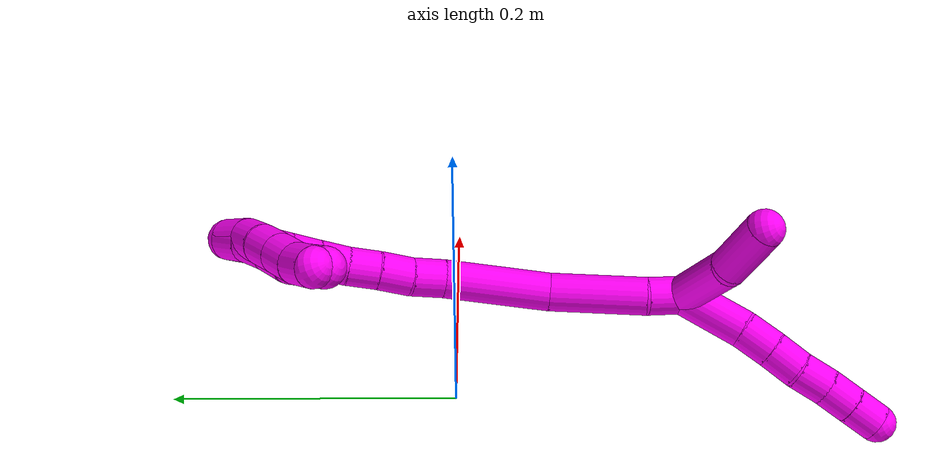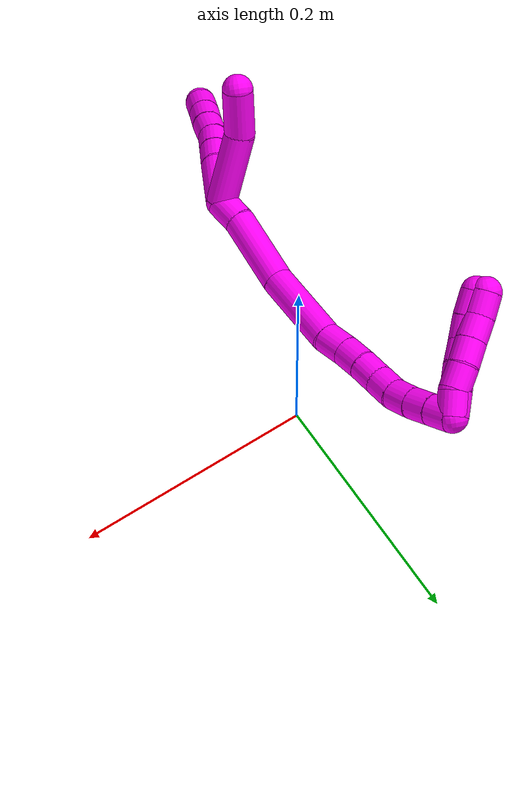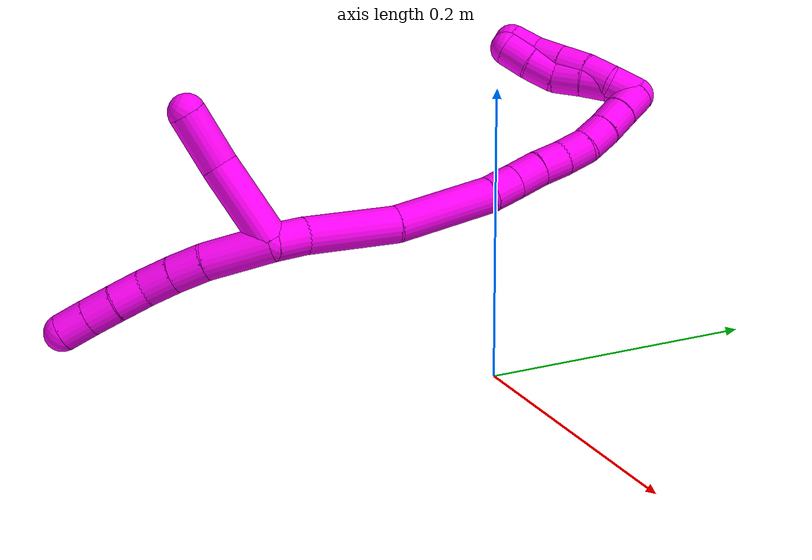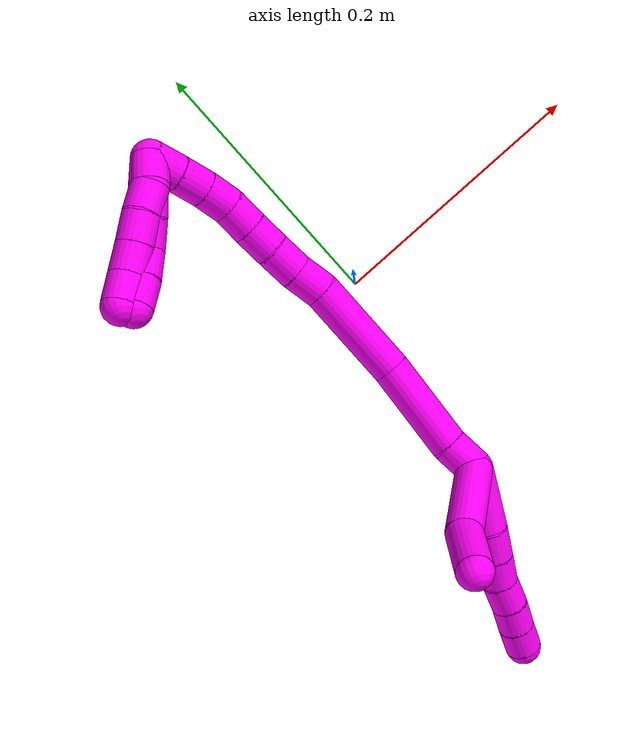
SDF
<sdf version="1.7">
 <world name="default">
  <model name="10">
   <static>0</static>
   <link name="10">
    <collision name="collision-cylinder-e_1_2_8">
     <pose>-0.007064 -0.015395 0.015002 0.798316 -0.317489 -0.134849</pose>
     <geometry><cylinder><radius>0.0125</radius><length>0.045253</length></cylinder></geometry>
     <surface>
      <friction><ode><mu>1.16</mu><mu2>1.16</mu2><slip1>0</slip1><slip2>0</slip2></ode></friction>
      <contact><ode><kp>1e+06</kp><kd>1</kd><max_vel>0</max_vel><min_depth>0.001</min_depth></ode></contact>
     </surface>
    </collision>
    <visual name="visual-cylinder-e_1_2_8">
     <pose>-0.007064 -0.015395 0.015002 0.798316 -0.317489 -0.134849</pose>
     <geometry><cylinder><radius>0.0125</radius><length>0.045253</length></cylinder></geometry>
     <material><ambient>1 0 0.964706 1</ambient></material>
    </visual>
    <collision name="collision-cylinder-e_2_8_9">
     <pose>-0.018073 -0.039035 0.036346 0.915141 -0.362521 -0.180009</pose>
     <geometry><cylinder><radius>0.0125</radius><length>0.022252</length></cylinder></geometry>
     <surface>
      <friction><ode><mu>1.16</mu><mu2>1.16</mu2><slip1>0</slip1><slip2>0</slip2></ode></friction>
      <contact><ode><kp>1e+06</kp><kd>1</kd><max_vel>0</max_vel><min_depth>0.001</min_depth></ode></contact>
     </surface>
    </collision>
    <visual name="visual-cylinder-e_2_8_9">
     <pose>-0.018073 -0.039035 0.036346 0.915141 -0.362521 -0.180009</pose>
     <geometry><cylinder><radius>0.0125</radius><length>0.022252</length></cylinder></geometry>
     <material><ambient>1 0 0.964706 1</ambient></material>
    </visual>
    <collision name="collision-cylinder-e_3_9_10">
     <pose>-0.02585 -0.055409 0.048267 0.969301 -0.37073 -0.196832</pose>
     <geometry><cylinder><radius>0.0125</radius><length>0.021154</length></cylinder></geometry>
     <surface>
      <friction><ode><mu>1.16</mu><mu2>1.16</mu2><slip1>0</slip1><slip2>0</slip2></ode></friction>
      <contact><ode><kp>1e+06</kp><kd>1</kd><max_vel>0</max_vel><min_depth>0.001</min_depth></ode></contact>
     </surface>
    </collision>
    <visual name="visual-cylinder-e_3_9_10">
     <pose>-0.02585 -0.055409 0.048267 0.969301 -0.37073 -0.196832</pose>
     <geometry><cylinder><radius>0.0125</radius><length>0.021154</length></cylinder></geometry>
     <material><ambient>1 0 0.964706 1</ambient></material>
    </visual>
    <collision name="collision-cylinder-e_4_10_11">
     <pose>-0.031854 -0.072268 0.059446 1.00047 -0.206394 -0.113099</pose>
     <geometry><cylinder><radius>0.0125</radius><length>0.021196</length></cylinder></geometry>
     <surface>
      <friction><ode><mu>1.16</mu><mu2>1.16</mu2><slip1>0</slip1><slip2>0</slip2></ode></friction>
      <contact><ode><kp>1e+06</kp><kd>1</kd><max_vel>0</max_vel><min_depth>0.001</min_depth></ode></contact>
     </surface>
    </collision>
    <visual name="visual-cylinder-e_4_10_11">
     <pose>-0.031854 -0.072268 0.059446 1.00047 -0.206394 -0.113099</pose>
     <geometry><cylinder><radius>0.0125</radius><length>0.021196</length></cylinder></geometry>
     <material><ambient>1 0 0.964706 1</ambient></material>
    </visual>
    <collision name="collision-cylinder-e_5_11_12">
     <pose>-0.036885 -0.089186 0.070094 1.01834 -0.289018 -0.162126</pose>
     <geometry><cylinder><radius>0.0125</radius><length>0.020066</length></cylinder></geometry>
     <surface>
      <friction><ode><mu>1.16</mu><mu2>1.16</mu2><slip1>0</slip1><slip2>0</slip2></ode></friction>
      <contact><ode><kp>1e+06</kp><kd>1</kd><max_vel>0</max_vel><min_depth>0.001</min_depth></ode></contact>
     </surface>
    </collision>
    <visual name="visual-cylinder-e_5_11_12">
     <pose>-0.036885 -0.089186 0.070094 1.01834 -0.289018 -0.162126</pose>
     <geometry><cylinder><radius>0.0125</radius><length>0.020066</length></cylinder></geometry>
     <material><ambient>1 0 0.964706 1</ambient></material>
    </visual>
    <collision name="collision-cylinder-e_6_12_6">
     <pose>-0.04236 -0.105738 0.080036 1.04132 -0.263521 -0.151702</pose>
     <geometry><cylinder><radius>0.0125</radius><length>0.02008</length></cylinder></geometry>
     <surface>
      <friction><ode><mu>1.16</mu><mu2>1.16</mu2><slip1>0</slip1><slip2>0</slip2></ode></friction>
      <contact><ode><kp>1e+06</kp><kd>1</kd><max_vel>0</max_vel><min_depth>0.001</min_depth></ode></contact>
     </surface>
    </collision>
    <visual name="visual-cylinder-e_6_12_6">
     <pose>-0.04236 -0.105738 0.080036 1.04132 -0.263521 -0.151702</pose>
     <geometry><cylinder><radius>0.0125</radius><length>0.02008</length></cylinder></geometry>
     <material><ambient>1 0 0.964706 1</ambient></material>
    </visual>
    <collision name="collision-cylinder-e_1_2_13">
     <pose>-0.006827 0.013796 0.025735 -0.492081 -0.229674 0.057916</pose>
     <geometry><cylinder><radius>0.0125</radius><length>0.059974</length></cylinder></geometry>
     <surface>
      <friction><ode><mu>1.16</mu><mu2>1.16</mu2><slip1>0</slip1><slip2>0</slip2></ode></friction>
      <contact><ode><kp>1e+06</kp><kd>1</kd><max_vel>0</max_vel><min_depth>0.001</min_depth></ode></contact>
     </surface>
    </collision>
    <visual name="visual-cylinder-e_1_2_13">
     <pose>-0.006827 0.013796 0.025735 -0.492081 -0.229674 0.057916</pose>
     <geometry><cylinder><radius>0.0125</radius><length>0.059974</length></cylinder></geometry>
     <material><ambient>1 0 0.964706 1</ambient></material>
    </visual>
    <collision name="collision-cylinder-e_2_13_5">
     <pose>-0.01167 0.037219 0.068903 -0.504594 0.099279 -0.025613</pose>
     <geometry><cylinder><radius>0.0125</radius><length>0.040026</length></cylinder></geometry>
     <surface>
      <friction><ode><mu>1.16</mu><mu2>1.16</mu2><slip1>0</slip1><slip2>0</slip2></ode></friction>
      <contact><ode><kp>1e+06</kp><kd>1</kd><max_vel>0</max_vel><min_depth>0.001</min_depth></ode></contact>
     </surface>
    </collision>
    <visual name="visual-cylinder-e_2_13_5">
     <pose>-0.01167 0.037219 0.068903 -0.504594 0.099279 -0.025613</pose>
     <geometry><cylinder><radius>0.0125</radius><length>0.040026</length></cylinder></geometry>
     <material><ambient>1 0 0.964706 1</ambient></material>
    </visual>
    <collision name="collision-cylinder-e_1_2_14">
     <pose>-0.003364 0.007075 -0.008526 -2.44893 -0.294764 0.780557</pose>
     <geometry><cylinder><radius>0.0125</radius><length>0.023156</length></cylinder></geometry>
     <surface>
      <friction><ode><mu>1.16</mu><mu2>1.16</mu2><slip1>0</slip1><slip2>0</slip2></ode></friction>
      <contact><ode><kp>1e+06</kp><kd>1</kd><max_vel>0</max_vel><min_depth>0.001</min_depth></ode></contact>
     </surface>
    </collision>
    <visual name="visual-cylinder-e_1_2_14">
     <pose>-0.003364 0.007075 -0.008526 -2.44893 -0.294764 0.780557</pose>
     <geometry><cylinder><radius>0.0125</radius><length>0.023156</length></cylinder></geometry>
     <material><ambient>1 0 0.964706 1</ambient></material>
    </visual>
    <collision name="collision-cylinder-e_2_14_15">
     <pose>-0.011057 0.032354 -0.042757 -2.52541 -0.136594 0.423462</pose>
     <geometry><cylinder><radius>0.0125</radius><length>0.06359</length></cylinder></geometry>
     <surface>
      <friction><ode><mu>1.16</mu><mu2>1.16</mu2><slip1>0</slip1><slip2>0</slip2></ode></friction>
      <contact><ode><kp>1e+06</kp><kd>1</kd><max_vel>0</max_vel><min_depth>0.001</min_depth></ode></contact>
     </surface>
    </collision>
    <visual name="visual-cylinder-e_2_14_15">
     <pose>-0.011057 0.032354 -0.042757 -2.52541 -0.136594 0.423462</pose>
     <geometry><cylinder><radius>0.0125</radius><length>0.06359</length></cylinder></geometry>
     <material><ambient>1 0 0.964706 1</ambient></material>
    </visual>
    <collision name="collision-cylinder-e_3_15_16">
     <pose>-0.021052 0.074868 -0.09258 -2.3522 -0.163958 0.389492</pose>
     <geometry><cylinder><radius>0.0125</radius><length>0.069418</length></cylinder></geometry>
     <surface>
      <friction><ode><mu>1.16</mu><mu2>1.16</mu2><slip1>0</slip1><slip2>0</slip2></ode></friction>
      <contact><ode><kp>1e+06</kp><kd>1</kd><max_vel>0</max_vel><min_depth>0.001</min_depth></ode></contact>
     </surface>
    </collision>
    <visual name="visual-cylinder-e_3_15_16">
     <pose>-0.021052 0.074868 -0.09258 -2.3522 -0.163958 0.389492</pose>
     <geometry><cylinder><radius>0.0125</radius><length>0.069418</length></cylinder></geometry>
     <material><ambient>1 0 0.964706 1</ambient></material>
    </visual>
    <collision name="collision-cylinder-e_4_16_17">
     <pose>-0.03032 0.107422 -0.122968 -2.22113 -0.334716 0.65688</pose>
     <geometry><cylinder><radius>0.0125</radius><length>0.021933</length></cylinder></geometry>
     <surface>
      <friction><ode><mu>1.16</mu><mu2>1.16</mu2><slip1>0</slip1><slip2>0</slip2></ode></friction>
      <contact><ode><kp>1e+06</kp><kd>1</kd><max_vel>0</max_vel><min_depth>0.001</min_depth></ode></contact>
     </surface>
    </collision>
    <visual name="visual-cylinder-e_4_16_17">
     <pose>-0.03032 0.107422 -0.122968 -2.22113 -0.334716 0.65688</pose>
     <geometry><cylinder><radius>0.0125</radius><length>0.021933</length></cylinder></geometry>
     <material><ambient>1 0 0.964706 1</ambient></material>
    </visual>
    <collision name="collision-cylinder-e_5_17_18">
     <pose>-0.036071 0.124308 -0.135265 -2.17967 -0.201236 0.382216</pose>
     <geometry><cylinder><radius>0.0125</radius><length>0.021505</length></cylinder></geometry>
     <surface>
      <friction><ode><mu>1.16</mu><mu2>1.16</mu2><slip1>0</slip1><slip2>0</slip2></ode></friction>
      <contact><ode><kp>1e+06</kp><kd>1</kd><max_vel>0</max_vel><min_depth>0.001</min_depth></ode></contact>
     </surface>
    </collision>
    <visual name="visual-cylinder-e_5_17_18">
     <pose>-0.036071 0.124308 -0.135265 -2.17967 -0.201236 0.382216</pose>
     <geometry><cylinder><radius>0.0125</radius><length>0.021505</length></cylinder></geometry>
     <material><ambient>1 0 0.964706 1</ambient></material>
    </visual>
    <collision name="collision-cylinder-e_6_18_19">
     <pose>-0.040362 0.140554 -0.147603 -2.2636 -0.213433 0.448597</pose>
     <geometry><cylinder><radius>0.0125</radius><length>0.020224</length></cylinder></geometry>
     <surface>
      <friction><ode><mu>1.16</mu><mu2>1.16</mu2><slip1>0</slip1><slip2>0</slip2></ode></friction>
      <contact><ode><kp>1e+06</kp><kd>1</kd><max_vel>0</max_vel><min_depth>0.001</min_depth></ode></contact>
     </surface>
    </collision>
    <visual name="visual-cylinder-e_6_18_19">
     <pose>-0.040362 0.140554 -0.147603 -2.2636 -0.213433 0.448597</pose>
     <geometry><cylinder><radius>0.0125</radius><length>0.020224</length></cylinder></geometry>
     <material><ambient>1 0 0.964706 1</ambient></material>
    </visual>
    <collision name="collision-cylinder-e_7_19_20">
     <pose>-0.044055 0.156229 -0.159615 -2.18572 -0.155652 0.298855</pose>
     <geometry><cylinder><radius>0.0125</radius><length>0.020002</length></cylinder></geometry>
     <surface>
      <friction><ode><mu>1.16</mu><mu2>1.16</mu2><slip1>0</slip1><slip2>0</slip2></ode></friction>
      <contact><ode><kp>1e+06</kp><kd>1</kd><max_vel>0</max_vel><min_depth>0.001</min_depth></ode></contact>
     </surface>
    </collision>
    <visual name="visual-cylinder-e_7_19_20">
     <pose>-0.044055 0.156229 -0.159615 -2.18572 -0.155652 0.298855</pose>
     <geometry><cylinder><radius>0.0125</radius><length>0.020002</length></cylinder></geometry>
     <material><ambient>1 0 0.964706 1</ambient></material>
    </visual>
    <collision name="collision-cylinder-e_8_20_21">
     <pose>-0.048346 0.173168 -0.169211 -1.98471 -0.275742 0.418774</pose>
     <geometry><cylinder><radius>0.0125</radius><length>0.020135</length></cylinder></geometry>
     <surface>
      <friction><ode><mu>1.16</mu><mu2>1.16</mu2><slip1>0</slip1><slip2>0</slip2></ode></friction>
      <contact><ode><kp>1e+06</kp><kd>1</kd><max_vel>0</max_vel><min_depth>0.001</min_depth></ode></contact>
     </surface>
    </collision>
    <visual name="visual-cylinder-e_8_20_21">
     <pose>-0.048346 0.173168 -0.169211 -1.98471 -0.275742 0.418774</pose>
     <geometry><cylinder><radius>0.0125</radius><length>0.020135</length></cylinder></geometry>
     <material><ambient>1 0 0.964706 1</ambient></material>
    </visual>
    <collision name="collision-cylinder-e_9_21_22">
     <pose>-0.054306 0.19097 -0.176247 -1.90882 -0.327717 0.45855</pose>
     <geometry><cylinder><radius>0.0125</radius><length>0.020001</length></cylinder></geometry>
     <surface>
      <friction><ode><mu>1.16</mu><mu2>1.16</mu2><slip1>0</slip1><slip2>0</slip2></ode></friction>
      <contact><ode><kp>1e+06</kp><kd>1</kd><max_vel>0</max_vel><min_depth>0.001</min_depth></ode></contact>
     </surface>
    </collision>
    <visual name="visual-cylinder-e_9_21_22">
     <pose>-0.054306 0.19097 -0.176247 -1.90882 -0.327717 0.45855</pose>
     <geometry><cylinder><radius>0.0125</radius><length>0.020001</length></cylinder></geometry>
     <material><ambient>1 0 0.964706 1</ambient></material>
    </visual>
    <collision name="collision-cylinder-e_10_22_1">
     <pose>-0.061111 0.208649 -0.182702 -1.93313 -0.366133 0.524022</pose>
     <geometry><cylinder><radius>0.0125</radius><length>0.020035</length></cylinder></geometry>
     <surface>
      <friction><ode><mu>1.16</mu><mu2>1.16</mu2><slip1>0</slip1><slip2>0</slip2></ode></friction>
      <contact><ode><kp>1e+06</kp><kd>1</kd><max_vel>0</max_vel><min_depth>0.001</min_depth></ode></contact>
     </surface>
    </collision>
    <visual name="visual-cylinder-e_10_22_1">
     <pose>-0.061111 0.208649 -0.182702 -1.93313 -0.366133 0.524022</pose>
     <geometry><cylinder><radius>0.0125</radius><length>0.020035</length></cylinder></geometry>
     <material><ambient>1 0 0.964706 1</ambient></material>
    </visual>
    <collision name="collision-cylinder-e_1_1_23">
     <pose>-0.068217 0.21678 -0.176678 0.06574 -0.359629 -0.011954</pose>
     <geometry><cylinder><radius>0.0125</radius><length>0.02</length></cylinder></geometry>
     <surface>
      <friction><ode><mu>1.16</mu><mu2>1.16</mu2><slip1>0</slip1><slip2>0</slip2></ode></friction>
      <contact><ode><kp>1e+06</kp><kd>1</kd><max_vel>0</max_vel><min_depth>0.001</min_depth></ode></contact>
     </surface>
    </collision>
    <visual name="visual-cylinder-e_1_1_23">
     <pose>-0.068217 0.21678 -0.176678 0.06574 -0.359629 -0.011954</pose>
     <geometry><cylinder><radius>0.0125</radius><length>0.02</length></cylinder></geometry>
     <material><ambient>1 0 0.964706 1</ambient></material>
    </visual>
    <collision name="collision-cylinder-e_2_23_24">
     <pose>-0.07603 0.213601 -0.158678 0.287916 -0.443823 -0.065391</pose>
     <geometry><cylinder><radius>0.0125</radius><length>0.02</length></cylinder></geometry>
     <surface>
      <friction><ode><mu>1.16</mu><mu2>1.16</mu2><slip1>0</slip1><slip2>0</slip2></ode></friction>
      <contact><ode><kp>1e+06</kp><kd>1</kd><max_vel>0</max_vel><min_depth>0.001</min_depth></ode></contact>
     </surface>
    </collision>
    <visual name="visual-cylinder-e_2_23_24">
     <pose>-0.07603 0.213601 -0.158678 0.287916 -0.443823 -0.065391</pose>
     <geometry><cylinder><radius>0.0125</radius><length>0.02</length></cylinder></geometry>
     <material><ambient>1 0 0.964706 1</ambient></material>
    </visual>
    <collision name="collision-cylinder-e_3_24_25">
     <pose>-0.085423 0.208218 -0.141891 0.333817 -0.535061 -0.092293</pose>
     <geometry><cylinder><radius>0.0125</radius><length>0.02</length></cylinder></geometry>
     <surface>
      <friction><ode><mu>1.16</mu><mu2>1.16</mu2><slip1>0</slip1><slip2>0</slip2></ode></friction>
      <contact><ode><kp>1e+06</kp><kd>1</kd><max_vel>0</max_vel><min_depth>0.001</min_depth></ode></contact>
     </surface>
    </collision>
    <visual name="visual-cylinder-e_3_24_25">
     <pose>-0.085423 0.208218 -0.141891 0.333817 -0.535061 -0.092293</pose>
     <geometry><cylinder><radius>0.0125</radius><length>0.02</length></cylinder></geometry>
     <material><ambient>1 0 0.964706 1</ambient></material>
    </visual>
    <collision name="collision-cylinder-e_4_25_26">
     <pose>-0.094256 0.20549 -0.124487 -0.009747 -0.382663 0.001888</pose>
     <geometry><cylinder><radius>0.0125</radius><length>0.02</length></cylinder></geometry>
     <surface>
      <friction><ode><mu>1.16</mu><mu2>1.16</mu2><slip1>0</slip1><slip2>0</slip2></ode></friction>
      <contact><ode><kp>1e+06</kp><kd>1</kd><max_vel>0</max_vel><min_depth>0.001</min_depth></ode></contact>
     </surface>
    </collision>
    <visual name="visual-cylinder-e_4_25_26">
     <pose>-0.094256 0.20549 -0.124487 -0.009747 -0.382663 0.001888</pose>
     <geometry><cylinder><radius>0.0125</radius><length>0.02</length></cylinder></geometry>
     <material><ambient>1 0 0.964706 1</ambient></material>
    </visual>
    <collision name="collision-cylinder-e_5_26_4">
     <pose>-0.10235 0.20671 -0.106283 -0.125866 -0.451163 0.028921</pose>
     <geometry><cylinder><radius>0.0125</radius><length>0.02</length></cylinder></geometry>
     <surface>
      <friction><ode><mu>1.16</mu><mu2>1.16</mu2><slip1>0</slip1><slip2>0</slip2></ode></friction>
      <contact><ode><kp>1e+06</kp><kd>1</kd><max_vel>0</max_vel><min_depth>0.001</min_depth></ode></contact>
     </surface>
    </collision>
    <visual name="visual-cylinder-e_5_26_4">
     <pose>-0.10235 0.20671 -0.106283 -0.125866 -0.451163 0.028921</pose>
     <geometry><cylinder><radius>0.0125</radius><length>0.02</length></cylinder></geometry>
     <material><ambient>1 0 0.964706 1</ambient></material>
    </visual>
    <collision name="collision-cylinder-e_1_1_27">
     <pose>-0.067292 0.217194 -0.176362 0.020805 -0.262431 -0.002746</pose>
     <geometry><cylinder><radius>0.0125</radius><length>0.02</length></cylinder></geometry>
     <surface>
      <friction><ode><mu>1.16</mu><mu2>1.16</mu2><slip1>0</slip1><slip2>0</slip2></ode></friction>
      <contact><ode><kp>1e+06</kp><kd>1</kd><max_vel>0</max_vel><min_depth>0.001</min_depth></ode></contact>
     </surface>
    </collision>
    <visual name="visual-cylinder-e_1_1_27">
     <pose>-0.067292 0.217194 -0.176362 0.020805 -0.262431 -0.002746</pose>
     <geometry><cylinder><radius>0.0125</radius><length>0.02</length></cylinder></geometry>
     <material><ambient>1 0 0.964706 1</ambient></material>
    </visual>
    <collision name="collision-cylinder-e_2_27_28">
     <pose>-0.075152 0.217248 -0.158209 -0.03001 -0.554505 0.008541</pose>
     <geometry><cylinder><radius>0.0125</radius><length>0.02</length></cylinder></geometry>
     <surface>
      <friction><ode><mu>1.16</mu><mu2>1.16</mu2><slip1>0</slip1><slip2>0</slip2></ode></friction>
      <contact><ode><kp>1e+06</kp><kd>1</kd><max_vel>0</max_vel><min_depth>0.001</min_depth></ode></contact>
     </surface>
    </collision>
    <visual name="visual-cylinder-e_2_27_28">
     <pose>-0.075152 0.217248 -0.158209 -0.03001 -0.554505 0.008541</pose>
     <geometry><cylinder><radius>0.0125</radius><length>0.02</length></cylinder></geometry>
     <material><ambient>1 0 0.964706 1</ambient></material>
    </visual>
    <collision name="collision-cylinder-e_3_28_29">
     <pose>-0.085789 0.216494 -0.141337 0.119959 -0.567077 -0.034993</pose>
     <geometry><cylinder><radius>0.0125</radius><length>0.02</length></cylinder></geometry>
     <surface>
      <friction><ode><mu>1.16</mu><mu2>1.16</mu2><slip1>0</slip1><slip2>0</slip2></ode></friction>
      <contact><ode><kp>1e+06</kp><kd>1</kd><max_vel>0</max_vel><min_depth>0.001</min_depth></ode></contact>
     </surface>
    </collision>
    <visual name="visual-cylinder-e_3_28_29">
     <pose>-0.085789 0.216494 -0.141337 0.119959 -0.567077 -0.034993</pose>
     <geometry><cylinder><radius>0.0125</radius><length>0.02</length></cylinder></geometry>
     <material><ambient>1 0 0.964706 1</ambient></material>
    </visual>
    <collision name="collision-cylinder-e_4_29_30">
     <pose>-0.096732 0.214584 -0.124708 0.108716 -0.591002 -0.033124</pose>
     <geometry><cylinder><radius>0.0125</radius><length>0.02</length></cylinder></geometry>
     <surface>
      <friction><ode><mu>1.16</mu><mu2>1.16</mu2><slip1>0</slip1><slip2>0</slip2></ode></friction>
      <contact><ode><kp>1e+06</kp><kd>1</kd><max_vel>0</max_vel><min_depth>0.001</min_depth></ode></contact>
     </surface>
    </collision>
    <visual name="visual-cylinder-e_4_29_30">
     <pose>-0.096732 0.214584 -0.124708 0.108716 -0.591002 -0.033124</pose>
     <geometry><cylinder><radius>0.0125</radius><length>0.02</length></cylinder></geometry>
     <material><ambient>1 0 0.964706 1</ambient></material>
    </visual>
    <collision name="collision-cylinder-e_5_30_3">
     <pose>-0.106816 0.214142 -0.107541 -0.051444 -0.468099 0.012268</pose>
     <geometry><cylinder><radius>0.0125</radius><length>0.02</length></cylinder></geometry>
     <surface>
      <friction><ode><mu>1.16</mu><mu2>1.16</mu2><slip1>0</slip1><slip2>0</slip2></ode></friction>
      <contact><ode><kp>1e+06</kp><kd>1</kd><max_vel>0</max_vel><min_depth>0.001</min_depth></ode></contact>
     </surface>
    </collision>
    <visual name="visual-cylinder-e_5_30_3">
     <pose>-0.106816 0.214142 -0.107541 -0.051444 -0.468099 0.012268</pose>
     <geometry><cylinder><radius>0.0125</radius><length>0.02</length></cylinder></geometry>
     <material><ambient>1 0 0.964706 1</ambient></material>
    </visual>
    <collision name="collision-sphere-3">
     <pose>-0.111328 0.2146 -0.098628 0 -0 0</pose>
     <geometry><sphere><radius>0.0125</radius></sphere></geometry>
     <surface>
      <friction><ode><mu>1.16</mu><mu2>1.16</mu2><slip1>0</slip1><slip2>0</slip2></ode></friction>
      <contact><ode><kp>1e+06</kp><kd>1</kd><max_vel>0</max_vel><min_depth>0.001</min_depth></ode></contact>
     </surface>
    </collision>
    <visual name="visual-sphere-3">
     <pose>-0.111328 0.2146 -0.098628 0 -0 0</pose>
     <geometry><sphere><radius>0.0125</radius></sphere></geometry>
     <material><ambient>1 0 0.964706 1</ambient></material>
    </visual>
    <collision name="collision-sphere-30">
     <pose>-0.102304 0.213683 -0.116453 0 -0 0</pose>
     <geometry><sphere><radius>0.0125</radius></sphere></geometry>
     <surface>
      <friction><ode><mu>1.16</mu><mu2>1.16</mu2><slip1>0</slip1><slip2>0</slip2></ode></friction>
      <contact><ode><kp>1e+06</kp><kd>1</kd><max_vel>0</max_vel><min_depth>0.001</min_depth></ode></contact>
     </surface>
    </collision>
    <visual name="visual-sphere-30">
     <pose>-0.102304 0.213683 -0.116453 0 -0 0</pose>
     <geometry><sphere><radius>0.0125</radius></sphere></geometry>
     <material><ambient>1 0 0.964706 1</ambient></material>
    </visual>
    <collision name="collision-sphere-29">
     <pose>-0.09116 0.215485 -0.132963 0 -0 0</pose>
     <geometry><sphere><radius>0.0125</radius></sphere></geometry>
     <surface>
      <friction><ode><mu>1.16</mu><mu2>1.16</mu2><slip1>0</slip1><slip2>0</slip2></ode></friction>
      <contact><ode><kp>1e+06</kp><kd>1</kd><max_vel>0</max_vel><min_depth>0.001</min_depth></ode></contact>
     </surface>
    </collision>
    <visual name="visual-sphere-29">
     <pose>-0.09116 0.215485 -0.132963 0 -0 0</pose>
     <geometry><sphere><radius>0.0125</radius></sphere></geometry>
     <material><ambient>1 0 0.964706 1</ambient></material>
    </visual>
    <collision name="collision-sphere-28">
     <pose>-0.080417 0.217503 -0.149711 0 -0 0</pose>
     <geometry><sphere><radius>0.0125</radius></sphere></geometry>
     <surface>
      <friction><ode><mu>1.16</mu><mu2>1.16</mu2><slip1>0</slip1><slip2>0</slip2></ode></friction>
      <contact><ode><kp>1e+06</kp><kd>1</kd><max_vel>0</max_vel><min_depth>0.001</min_depth></ode></contact>
     </surface>
    </collision>
    <visual name="visual-sphere-28">
     <pose>-0.080417 0.217503 -0.149711 0 -0 0</pose>
     <geometry><sphere><radius>0.0125</radius></sphere></geometry>
     <material><ambient>1 0 0.964706 1</ambient></material>
    </visual>
    <collision name="collision-sphere-27">
     <pose>-0.069886 0.216993 -0.166707 0 -0 0</pose>
     <geometry><sphere><radius>0.0125</radius></sphere></geometry>
     <surface>
      <friction><ode><mu>1.16</mu><mu2>1.16</mu2><slip1>0</slip1><slip2>0</slip2></ode></friction>
      <contact><ode><kp>1e+06</kp><kd>1</kd><max_vel>0</max_vel><min_depth>0.001</min_depth></ode></contact>
     </surface>
    </collision>
    <visual name="visual-sphere-27">
     <pose>-0.069886 0.216993 -0.166707 0 -0 0</pose>
     <geometry><sphere><radius>0.0125</radius></sphere></geometry>
     <material><ambient>1 0 0.964706 1</ambient></material>
    </visual>
    <collision name="collision-sphere-4">
     <pose>-0.10671 0.20784 -0.097355 0 -0 0</pose>
     <geometry><sphere><radius>0.0125</radius></sphere></geometry>
     <surface>
      <friction><ode><mu>1.16</mu><mu2>1.16</mu2><slip1>0</slip1><slip2>0</slip2></ode></friction>
      <contact><ode><kp>1e+06</kp><kd>1</kd><max_vel>0</max_vel><min_depth>0.001</min_depth></ode></contact>
     </surface>
    </collision>
    <visual name="visual-sphere-4">
     <pose>-0.10671 0.20784 -0.097355 0 -0 0</pose>
     <geometry><sphere><radius>0.0125</radius></sphere></geometry>
     <material><ambient>1 0 0.964706 1</ambient></material>
    </visual>
    <collision name="collision-sphere-26">
     <pose>-0.09799 0.20558 -0.115211 0 -0 0</pose>
     <geometry><sphere><radius>0.0125</radius></sphere></geometry>
     <surface>
      <friction><ode><mu>1.16</mu><mu2>1.16</mu2><slip1>0</slip1><slip2>0</slip2></ode></friction>
      <contact><ode><kp>1e+06</kp><kd>1</kd><max_vel>0</max_vel><min_depth>0.001</min_depth></ode></contact>
     </surface>
    </collision>
    <visual name="visual-sphere-26">
     <pose>-0.09799 0.20558 -0.115211 0 -0 0</pose>
     <geometry><sphere><radius>0.0125</radius></sphere></geometry>
     <material><ambient>1 0 0.964706 1</ambient></material>
    </visual>
    <collision name="collision-sphere-25">
     <pose>-0.090522 0.205399 -0.133764 0 -0 0</pose>
     <geometry><sphere><radius>0.0125</radius></sphere></geometry>
     <surface>
      <friction><ode><mu>1.16</mu><mu2>1.16</mu2><slip1>0</slip1><slip2>0</slip2></ode></friction>
      <contact><ode><kp>1e+06</kp><kd>1</kd><max_vel>0</max_vel><min_depth>0.001</min_depth></ode></contact>
     </surface>
    </collision>
    <visual name="visual-sphere-25">
     <pose>-0.090522 0.205399 -0.133764 0 -0 0</pose>
     <geometry><sphere><radius>0.0125</radius></sphere></geometry>
     <material><ambient>1 0 0.964706 1</ambient></material>
    </visual>
    <collision name="collision-sphere-24">
     <pose>-0.080324 0.211036 -0.150019 0 -0 0</pose>
     <geometry><sphere><radius>0.0125</radius></sphere></geometry>
     <surface>
      <friction><ode><mu>1.16</mu><mu2>1.16</mu2><slip1>0</slip1><slip2>0</slip2></ode></friction>
      <contact><ode><kp>1e+06</kp><kd>1</kd><max_vel>0</max_vel><min_depth>0.001</min_depth></ode></contact>
     </surface>
    </collision>
    <visual name="visual-sphere-24">
     <pose>-0.080324 0.211036 -0.150019 0 -0 0</pose>
     <geometry><sphere><radius>0.0125</radius></sphere></geometry>
     <material><ambient>1 0 0.964706 1</ambient></material>
    </visual>
    <collision name="collision-sphere-23">
     <pose>-0.071736 0.216165 -0.167338 0 -0 0</pose>
     <geometry><sphere><radius>0.0125</radius></sphere></geometry>
     <surface>
      <friction><ode><mu>1.16</mu><mu2>1.16</mu2><slip1>0</slip1><slip2>0</slip2></ode></friction>
      <contact><ode><kp>1e+06</kp><kd>1</kd><max_vel>0</max_vel><min_depth>0.001</min_depth></ode></contact>
     </surface>
    </collision>
    <visual name="visual-sphere-23">
     <pose>-0.071736 0.216165 -0.167338 0 -0 0</pose>
     <geometry><sphere><radius>0.0125</radius></sphere></geometry>
     <material><ambient>1 0 0.964706 1</ambient></material>
    </visual>
    <collision name="collision-sphere-1">
     <pose>-0.064698 0.217395 -0.186018 0 -0 0</pose>
     <geometry><sphere><radius>0.0125</radius></sphere></geometry>
     <surface>
      <friction><ode><mu>1.16</mu><mu2>1.16</mu2><slip1>0</slip1><slip2>0</slip2></ode></friction>
      <contact><ode><kp>1e+06</kp><kd>1</kd><max_vel>0</max_vel><min_depth>0.001</min_depth></ode></contact>
     </surface>
    </collision>
    <visual name="visual-sphere-1">
     <pose>-0.064698 0.217395 -0.186018 0 -0 0</pose>
     <geometry><sphere><radius>0.0125</radius></sphere></geometry>
     <material><ambient>1 0 0.964706 1</ambient></material>
    </visual>
    <collision name="collision-sphere-22">
     <pose>-0.057525 0.199902 -0.179387 0 -0 0</pose>
     <geometry><sphere><radius>0.0125</radius></sphere></geometry>
     <surface>
      <friction><ode><mu>1.16</mu><mu2>1.16</mu2><slip1>0</slip1><slip2>0</slip2></ode></friction>
      <contact><ode><kp>1e+06</kp><kd>1</kd><max_vel>0</max_vel><min_depth>0.001</min_depth></ode></contact>
     </surface>
    </collision>
    <visual name="visual-sphere-22">
     <pose>-0.057525 0.199902 -0.179387 0 -0 0</pose>
     <geometry><sphere><radius>0.0125</radius></sphere></geometry>
     <material><ambient>1 0 0.964706 1</ambient></material>
    </visual>
    <collision name="collision-sphere-21">
     <pose>-0.051087 0.182037 -0.173107 0 -0 0</pose>
     <geometry><sphere><radius>0.0125</radius></sphere></geometry>
     <surface>
      <friction><ode><mu>1.16</mu><mu2>1.16</mu2><slip1>0</slip1><slip2>0</slip2></ode></friction>
      <contact><ode><kp>1e+06</kp><kd>1</kd><max_vel>0</max_vel><min_depth>0.001</min_depth></ode></contact>
     </surface>
    </collision>
    <visual name="visual-sphere-21">
     <pose>-0.051087 0.182037 -0.173107 0 -0 0</pose>
     <geometry><sphere><radius>0.0125</radius></sphere></geometry>
     <material><ambient>1 0 0.964706 1</ambient></material>
    </visual>
    <collision name="collision-sphere-12">
     <pose>-0.039745 -0.097372 0.07514 0 -0 0</pose>
     <geometry><sphere><radius>0.0125</radius></sphere></geometry>
     <surface>
      <friction><ode><mu>1.16</mu><mu2>1.16</mu2><slip1>0</slip1><slip2>0</slip2></ode></friction>
      <contact><ode><kp>1e+06</kp><kd>1</kd><max_vel>0</max_vel><min_depth>0.001</min_depth></ode></contact>
     </surface>
    </collision>
    <visual name="visual-sphere-12">
     <pose>-0.039745 -0.097372 0.07514 0 -0 0</pose>
     <geometry><sphere><radius>0.0125</radius></sphere></geometry>
     <material><ambient>1 0 0.964706 1</ambient></material>
    </visual>
    <collision name="collision-sphere-11">
     <pose>-0.034026 -0.081 0.065047 0 -0 0</pose>
     <geometry><sphere><radius>0.0125</radius></sphere></geometry>
     <surface>
      <friction><ode><mu>1.16</mu><mu2>1.16</mu2><slip1>0</slip1><slip2>0</slip2></ode></friction>
      <contact><ode><kp>1e+06</kp><kd>1</kd><max_vel>0</max_vel><min_depth>0.001</min_depth></ode></contact>
     </surface>
    </collision>
    <visual name="visual-sphere-11">
     <pose>-0.034026 -0.081 0.065047 0 -0 0</pose>
     <geometry><sphere><radius>0.0125</radius></sphere></geometry>
     <material><ambient>1 0 0.964706 1</ambient></material>
    </visual>
    <collision name="collision-sphere-10">
     <pose>-0.029682 -0.063537 0.053846 0 -0 0</pose>
     <geometry><sphere><radius>0.0125</radius></sphere></geometry>
     <surface>
      <friction><ode><mu>1.16</mu><mu2>1.16</mu2><slip1>0</slip1><slip2>0</slip2></ode></friction>
      <contact><ode><kp>1e+06</kp><kd>1</kd><max_vel>0</max_vel><min_depth>0.001</min_depth></ode></contact>
     </surface>
    </collision>
    <visual name="visual-sphere-10">
     <pose>-0.029682 -0.063537 0.053846 0 -0 0</pose>
     <geometry><sphere><radius>0.0125</radius></sphere></geometry>
     <material><ambient>1 0 0.964706 1</ambient></material>
    </visual>
    <collision name="collision-sphere-9">
     <pose>-0.022018 -0.047281 0.042689 0 -0 0</pose>
     <geometry><sphere><radius>0.0125</radius></sphere></geometry>
     <surface>
      <friction><ode><mu>1.16</mu><mu2>1.16</mu2><slip1>0</slip1><slip2>0</slip2></ode></friction>
      <contact><ode><kp>1e+06</kp><kd>1</kd><max_vel>0</max_vel><min_depth>0.001</min_depth></ode></contact>
     </surface>
    </collision>
    <visual name="visual-sphere-9">
     <pose>-0.022018 -0.047281 0.042689 0 -0 0</pose>
     <geometry><sphere><radius>0.0125</radius></sphere></geometry>
     <material><ambient>1 0 0.964706 1</ambient></material>
    </visual>
    <collision name="collision-sphere-2">
     <geometry><sphere><radius>0.0125</radius></sphere></geometry>
     <surface>
      <friction><ode><mu>1.16</mu><mu2>1.16</mu2><slip1>0</slip1><slip2>0</slip2></ode></friction>
      <contact><ode><kp>1e+06</kp><kd>1</kd><max_vel>0</max_vel><min_depth>0.001</min_depth></ode></contact>
     </surface>
    </collision>
    <visual name="visual-sphere-2">
     <geometry><sphere><radius>0.0125</radius></sphere></geometry>
     <material><ambient>1 0 0.964706 1</ambient></material>
    </visual>
    <collision name="collision-sphere-19">
     <pose>-0.042504 0.148159 -0.153915 0 -0 0</pose>
     <geometry><sphere><radius>0.0125</radius></sphere></geometry>
     <surface>
      <friction><ode><mu>1.16</mu><mu2>1.16</mu2><slip1>0</slip1><slip2>0</slip2></ode></friction>
      <contact><ode><kp>1e+06</kp><kd>1</kd><max_vel>0</max_vel><min_depth>0.001</min_depth></ode></contact>
     </surface>
    </collision>
    <visual name="visual-sphere-19">
     <pose>-0.042504 0.148159 -0.153915 0 -0 0</pose>
     <geometry><sphere><radius>0.0125</radius></sphere></geometry>
     <material><ambient>1 0 0.964706 1</ambient></material>
    </visual>
    <collision name="collision-sphere-8">
     <pose>-0.014127 -0.030789 0.030004 0 -0 0</pose>
     <geometry><sphere><radius>0.0125</radius></sphere></geometry>
     <surface>
      <friction><ode><mu>1.16</mu><mu2>1.16</mu2><slip1>0</slip1><slip2>0</slip2></ode></friction>
      <contact><ode><kp>1e+06</kp><kd>1</kd><max_vel>0</max_vel><min_depth>0.001</min_depth></ode></contact>
     </surface>
    </collision>
    <visual name="visual-sphere-8">
     <pose>-0.014127 -0.030789 0.030004 0 -0 0</pose>
     <geometry><sphere><radius>0.0125</radius></sphere></geometry>
     <material><ambient>1 0 0.964706 1</ambient></material>
    </visual>
    <collision name="collision-sphere-6">
     <pose>-0.044975 -0.114104 0.084932 0 -0 0</pose>
     <geometry><sphere><radius>0.0125</radius></sphere></geometry>
     <surface>
      <friction><ode><mu>1.16</mu><mu2>1.16</mu2><slip1>0</slip1><slip2>0</slip2></ode></friction>
      <contact><ode><kp>1e+06</kp><kd>1</kd><max_vel>0</max_vel><min_depth>0.001</min_depth></ode></contact>
     </surface>
    </collision>
    <visual name="visual-sphere-6">
     <pose>-0.044975 -0.114104 0.084932 0 -0 0</pose>
     <geometry><sphere><radius>0.0125</radius></sphere></geometry>
     <material><ambient>1 0 0.964706 1</ambient></material>
    </visual>
    <collision name="collision-sphere-13">
     <pose>-0.013654 0.027591 0.05147 0 -0 0</pose>
     <geometry><sphere><radius>0.0125</radius></sphere></geometry>
     <surface>
      <friction><ode><mu>1.16</mu><mu2>1.16</mu2><slip1>0</slip1><slip2>0</slip2></ode></friction>
      <contact><ode><kp>1e+06</kp><kd>1</kd><max_vel>0</max_vel><min_depth>0.001</min_depth></ode></contact>
     </surface>
    </collision>
    <visual name="visual-sphere-13">
     <pose>-0.013654 0.027591 0.05147 0 -0 0</pose>
     <geometry><sphere><radius>0.0125</radius></sphere></geometry>
     <material><ambient>1 0 0.964706 1</ambient></material>
    </visual>
    <collision name="collision-sphere-5">
     <pose>-0.009686 0.046847 0.086335 0 -0 0</pose>
     <geometry><sphere><radius>0.0125</radius></sphere></geometry>
     <surface>
      <friction><ode><mu>1.16</mu><mu2>1.16</mu2><slip1>0</slip1><slip2>0</slip2></ode></friction>
      <contact><ode><kp>1e+06</kp><kd>1</kd><max_vel>0</max_vel><min_depth>0.001</min_depth></ode></contact>
     </surface>
    </collision>
    <visual name="visual-sphere-5">
     <pose>-0.009686 0.046847 0.086335 0 -0 0</pose>
     <geometry><sphere><radius>0.0125</radius></sphere></geometry>
     <material><ambient>1 0 0.964706 1</ambient></material>
    </visual>
    <collision name="collision-sphere-14">
     <pose>-0.006727 0.01415 -0.017051 0 -0 0</pose>
     <geometry><sphere><radius>0.0125</radius></sphere></geometry>
     <surface>
      <friction><ode><mu>1.16</mu><mu2>1.16</mu2><slip1>0</slip1><slip2>0</slip2></ode></friction>
      <contact><ode><kp>1e+06</kp><kd>1</kd><max_vel>0</max_vel><min_depth>0.001</min_depth></ode></contact>
     </surface>
    </collision>
    <visual name="visual-sphere-14">
     <pose>-0.006727 0.01415 -0.017051 0 -0 0</pose>
     <geometry><sphere><radius>0.0125</radius></sphere></geometry>
     <material><ambient>1 0 0.964706 1</ambient></material>
    </visual>
    <collision name="collision-sphere-15">
     <pose>-0.015386 0.050558 -0.068463 0 -0 0</pose>
     <geometry><sphere><radius>0.0125</radius></sphere></geometry>
     <surface>
      <friction><ode><mu>1.16</mu><mu2>1.16</mu2><slip1>0</slip1><slip2>0</slip2></ode></friction>
      <contact><ode><kp>1e+06</kp><kd>1</kd><max_vel>0</max_vel><min_depth>0.001</min_depth></ode></contact>
     </surface>
    </collision>
    <visual name="visual-sphere-15">
     <pose>-0.015386 0.050558 -0.068463 0 -0 0</pose>
     <geometry><sphere><radius>0.0125</radius></sphere></geometry>
     <material><ambient>1 0 0.964706 1</ambient></material>
    </visual>
    <collision name="collision-sphere-16">
     <pose>-0.026717 0.099178 -0.116697 0 -0 0</pose>
     <geometry><sphere><radius>0.0125</radius></sphere></geometry>
     <surface>
      <friction><ode><mu>1.16</mu><mu2>1.16</mu2><slip1>0</slip1><slip2>0</slip2></ode></friction>
      <contact><ode><kp>1e+06</kp><kd>1</kd><max_vel>0</max_vel><min_depth>0.001</min_depth></ode></contact>
     </surface>
    </collision>
    <visual name="visual-sphere-16">
     <pose>-0.026717 0.099178 -0.116697 0 -0 0</pose>
     <geometry><sphere><radius>0.0125</radius></sphere></geometry>
     <material><ambient>1 0 0.964706 1</ambient></material>
    </visual>
    <collision name="collision-sphere-17">
     <pose>-0.033922 0.115666 -0.129239 0 -0 0</pose>
     <geometry><sphere><radius>0.0125</radius></sphere></geometry>
     <surface>
      <friction><ode><mu>1.16</mu><mu2>1.16</mu2><slip1>0</slip1><slip2>0</slip2></ode></friction>
      <contact><ode><kp>1e+06</kp><kd>1</kd><max_vel>0</max_vel><min_depth>0.001</min_depth></ode></contact>
     </surface>
    </collision>
    <visual name="visual-sphere-17">
     <pose>-0.033922 0.115666 -0.129239 0 -0 0</pose>
     <geometry><sphere><radius>0.0125</radius></sphere></geometry>
     <material><ambient>1 0 0.964706 1</ambient></material>
    </visual>
    <collision name="collision-sphere-18">
     <pose>-0.03822 0.13295 -0.141291 0 -0 0</pose>
     <geometry><sphere><radius>0.0125</radius></sphere></geometry>
     <surface>
      <friction><ode><mu>1.16</mu><mu2>1.16</mu2><slip1>0</slip1><slip2>0</slip2></ode></friction>
      <contact><ode><kp>1e+06</kp><kd>1</kd><max_vel>0</max_vel><min_depth>0.001</min_depth></ode></contact>
     </surface>
    </collision>
    <visual name="visual-sphere-18">
     <pose>-0.03822 0.13295 -0.141291 0 -0 0</pose>
     <geometry><sphere><radius>0.0125</radius></sphere></geometry>
     <material><ambient>1 0 0.964706 1</ambient></material>
    </visual>
    <collision name="collision-sphere-20">
     <pose>-0.045605 0.164299 -0.165315 0 -0 0</pose>
     <geometry><sphere><radius>0.0125</radius></sphere></geometry>
     <surface>
      <friction><ode><mu>1.16</mu><mu2>1.16</mu2><slip1>0</slip1><slip2>0</slip2></ode></friction>
      <contact><ode><kp>1e+06</kp><kd>1</kd><max_vel>0</max_vel><min_depth>0.001</min_depth></ode></contact>
     </surface>
    </collision>
    <visual name="visual-sphere-20">
     <pose>-0.045605 0.164299 -0.165315 0 -0 0</pose>
     <geometry><sphere><radius>0.0125</radius></sphere></geometry>
     <material><ambient>1 0 0.964706 1</ambient></material>
    </visual>
    <inertial>
     <pose>-0.040316 0.088862 -0.065279 0 -0 0</pose>
     <mass>0.75</mass>
     <inertia><ixx>0.000125</ixx><ixy>0</ixy><ixz>0</ixz><iyy>4.6e-05</iyy><iyz>0</iyz><izz>-4e-06</izz></inertia>
    </inertial>
   </link>
   <pose>-0.024773 -0.148524 0.109849 0.996516 -0.273155 -0.217207</pose>
  </model>
 </world>
</sdf>
